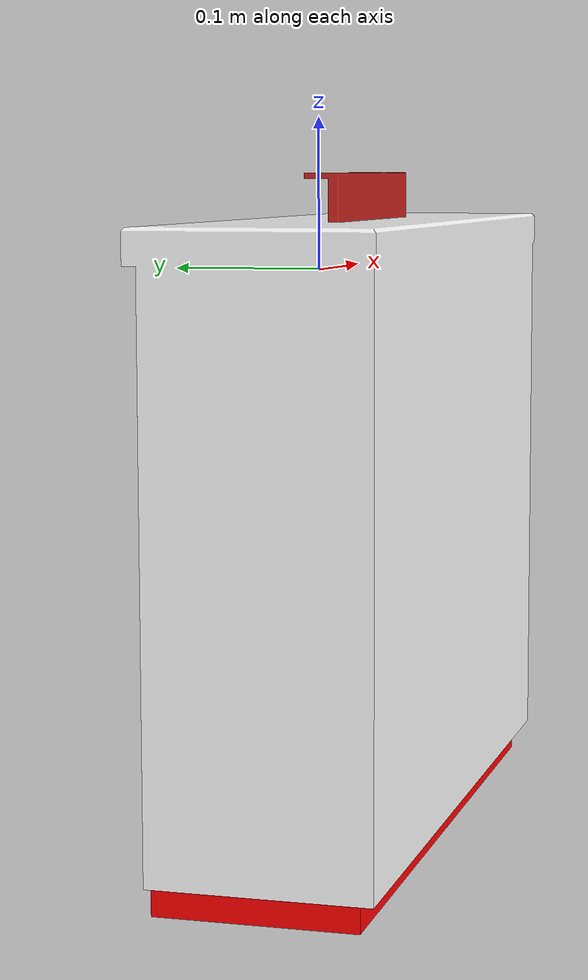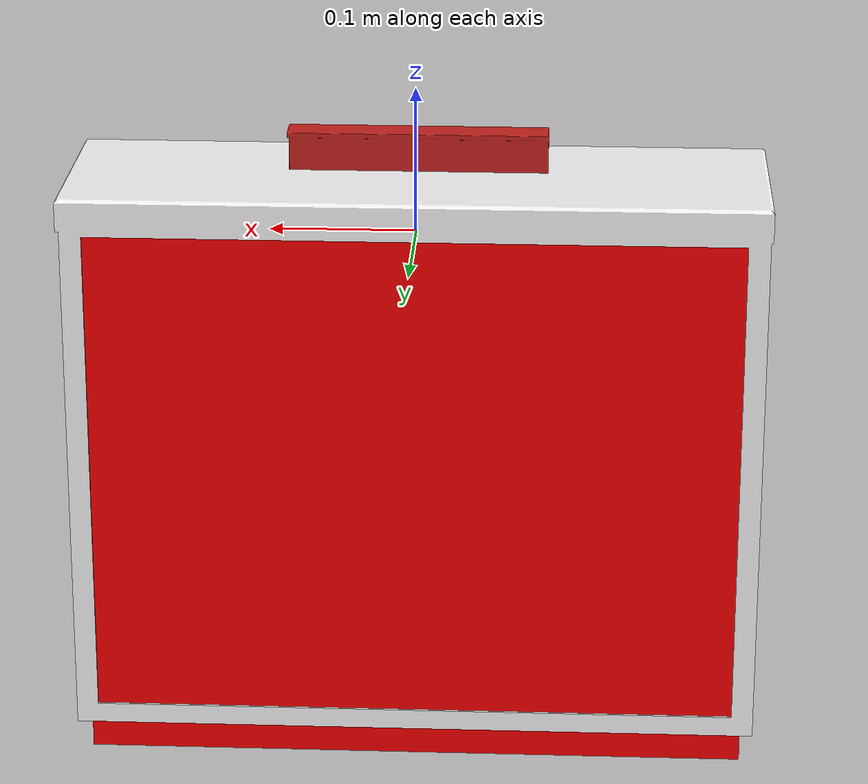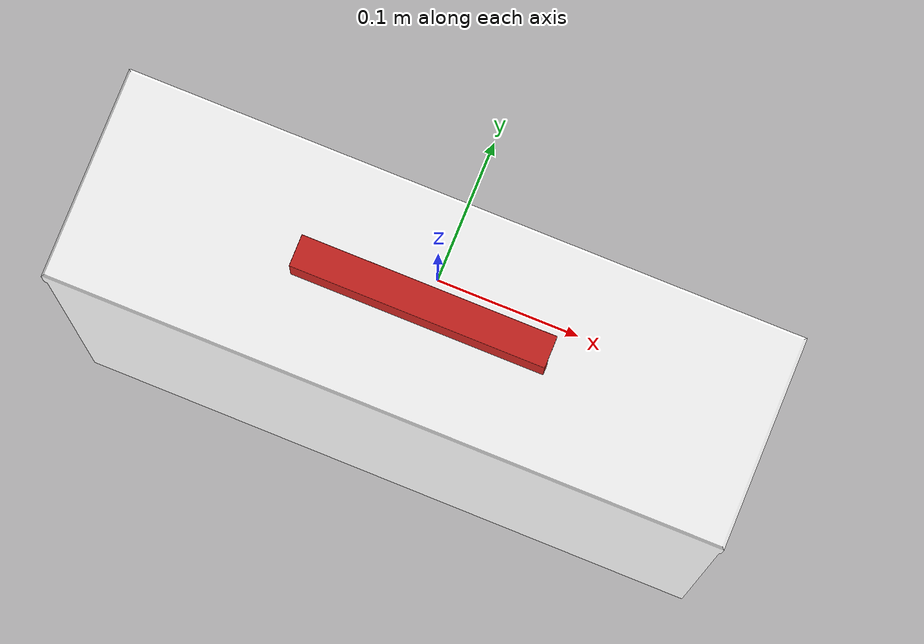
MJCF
<mujoco model="Drawer_b7714dd0">
  <compiler autolimits="true" boundmass="0.01" angle="radian"/>
  <default>
    <default class="/">
      <default class="__VISUAL_MJT__">
        <geom contype="0" conaffinity="0" group="0"/>
      </default>
      <default class="__STRUCTURAL_MJT__">
        <geom contype="8" conaffinity="15" group="4" friction="0.90000000000000002 0.90000000000000002 0.001" solref="0.025000000000000001 1" solimp="0.998 0.998 0.001"/>
      </default>
      <default class="__DYNAMIC_MJT__">
        <geom contype="1" conaffinity="15" group="4" friction="0.90000000000000002 0.90000000000000002 0.001" solref="0.025000000000000001 1" solimp="0.998 0.998 0.001"/>
      </default>
    </default>
  </default>
  <asset>
    <material name="material_WhiteWoodClean" class="/" specular="0.5" shininess="0.5" rgba="1 1 1 1"/>
    <mesh name="Drawer_b7714dd0_Mesh_01_fd8e8a99" class="/" file="Drawer_b7714dd0_Mesh_01_fd8e8a99/Drawer_b7714dd0_Mesh_01_fd8e8a99.obj" scale="1 1 1" inertia="legacy"/>
    <texture name="HammeredMetal_AlbedoTransparency_2" type="2d" file="HammeredMetal_AlbedoTransparency.png"/>
    <material name="material_HammeredMetal_AlbedoTransparency_2" class="/" texture="HammeredMetal_AlbedoTransparency_2" specular="0.5" shininess="0.5" rgba="1 0.93407709999999999 0.81617649999999997 1"/>
    <mesh name="Drawer_b7714dd0_handle_3_178mm_01_07128cb6" class="/" file="Drawer_b7714dd0_handle_3_178mm_01_07128cb6/Drawer_b7714dd0_handle_3_178mm_01_07128cb6.obj" scale="1 1 1" inertia="legacy"/>
  </asset>
  <worldbody>
    <body name="Drawer_b7714dd0">
      <body name="Drawer_b7714dd0_Mesh_01_fd8e8a99" pos="-0 0 0.011199951171875" quat="1 0 0 0">
        <geom name="Drawer_b7714dd0_Mesh_01_fd8e8a99" class="__VISUAL_MJT__" type="mesh" material="material_WhiteWoodClean" mesh="Drawer_b7714dd0_Mesh_01_fd8e8a99"/>
        <joint name="Drawer_b7714dd0_joint" class="/" type="slide" pos="-0 0 -0.01119999960064888" axis="0 0 1" stiffness="0" range="0 0.31900000000000001" damping="0.10000000000000001" frictionloss="0"/>
        <site name="Drawer_b7714dd0_Mesh_01_fd8e8a99_Receptacle_0" class="/" type="box" rgba="1 0 0 1" size="0.22927772998809814 0.064363397657871246 0.19579392671585083" pos="-0.000957489013671875 -0.024400234222412109 -0.1904904842376709" quat="0 1 0 0"/>
        <geom name="Drawer_b7714dd0_Mesh_01_fd8e8a99_PrimitiveCollider_0" class="__DYNAMIC_MJT__" type="box" size="0.23976141214370728 0.074873313307762146 0.011387884616851807" rgba="0 1 0 1" pos="-0 -0.024326026439666748 0.00020098686218261719" quat="0 1 0 0"/>
        <geom name="Drawer_b7714dd0_Mesh_01_fd8e8a99_PrimitiveCollider_1" class="__DYNAMIC_MJT__" type="box" size="0.23976141214370728 0.070320680737495422 0.007381439208984375" rgba="0 1 0 1" pos="-0 -0.028150200843811035 -0.37106227874755859" quat="0 1 0 0"/>
        <geom name="Drawer_b7714dd0_Mesh_01_fd8e8a99_PrimitiveCollider_2" class="__DYNAMIC_MJT__" type="box" size="0.19288793206214905 0.069621071219444275 0.0073814410716295242" rgba="0 1 0 1" pos="-0.2313377857208252 -0.027450621128082275 -0.18557357788085938" quat="0 0.70710678118654757 0 0.70710678118654757"/>
        <geom name="Drawer_b7714dd0_Mesh_01_fd8e8a99_PrimitiveCollider_3" class="__DYNAMIC_MJT__" type="box" size="0.19288802146911621 0.069621071219444275 0.0073814443312585354" rgba="0 1 0 1" pos="0.23086214065551758 -0.027450621128082275 -0.18557333946228027" quat="0 0.70710678118654757 0 0.70710678118654757"/>
        <geom name="Drawer_b7714dd0_Mesh_01_fd8e8a99_PrimitiveCollider_4" class="__DYNAMIC_MJT__" type="box" size="0.19288797676563263 0.23735302686691284 0.0050300620496273041" rgba="0 1 0 1" pos="-0.00072526931762695312 -0.093489140272140503 -0.18557333946228027" quat="-0.49999994039535345 0.49999999999999822 0.500000059604643 0.49999999999999822"/>
        <body name="Drawer_b7714dd0_handle_3_178mm_01_07128cb6" pos="-0 -0.033999979496002197 0.019999932497739792" quat="1 0 0 0">
          <geom name="Drawer_b7714dd0_handle_3_178mm_01_07128cb6" class="__VISUAL_MJT__" type="mesh" material="material_HammeredMetal_AlbedoTransparency_2" mesh="Drawer_b7714dd0_handle_3_178mm_01_07128cb6"/>
          <geom name="Drawer_b7714dd0_handle_3_178mm_01_07128cb6_PrimitiveCollider_0" class="__DYNAMIC_MJT__" type="box" size="0.088752083480358124 0.0035549115855246782 0.016431529074907303" rgba="0 1 0 1" pos="-0 0 0.016290187835693359" quat="0 1 0 0"/>
          <geom name="Drawer_b7714dd0_handle_3_178mm_01_07128cb6_PrimitiveCollider_1" class="__DYNAMIC_MJT__" type="box" size="0.088752083480358124 0.0077598136849701405 0.0019227256998419762" rgba="0 1 0 1" pos="-0 0.011284887790679932 0.030798912048339844" quat="0 1 0 0"/>
        </body>
      </body>
    </body>
  </worldbody>
  <contact>
    <exclude name="//unnamed_contact_0" body1="Drawer_b7714dd0_Mesh_01_fd8e8a99" body2="Drawer_b7714dd0_handle_3_178mm_01_07128cb6"/>
  </contact>
</mujoco>
